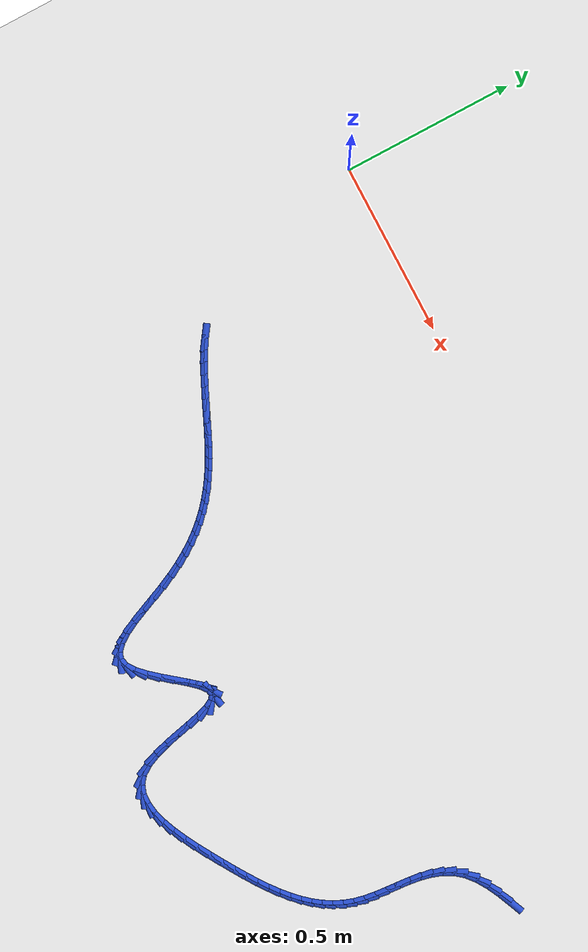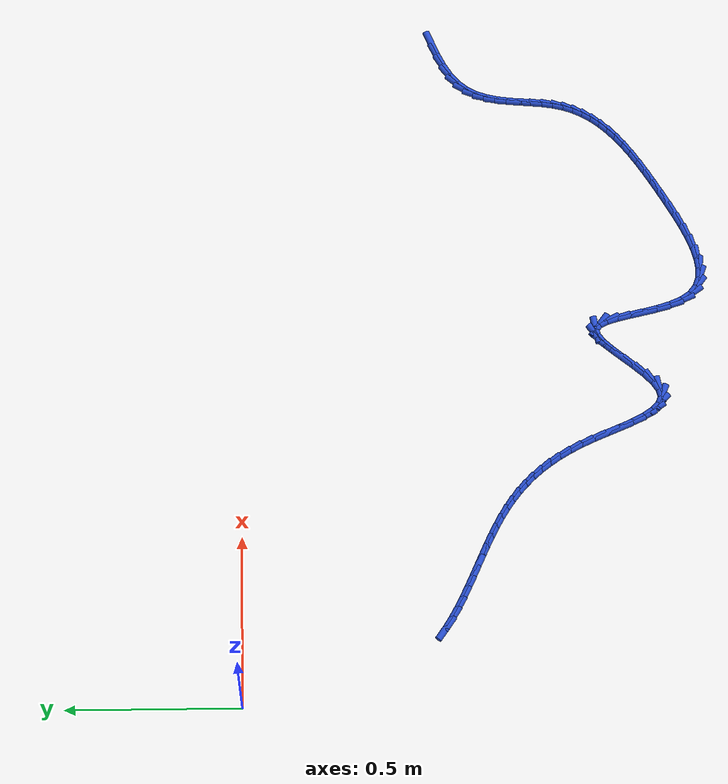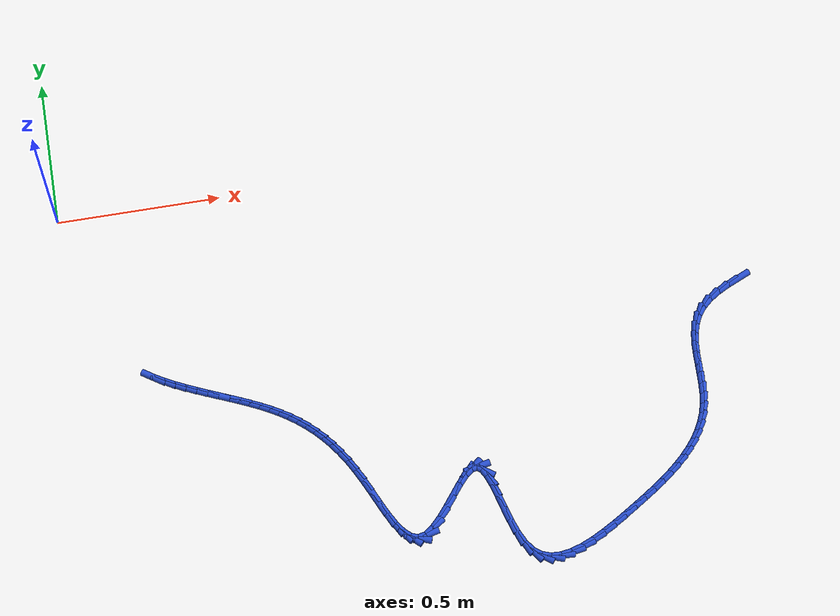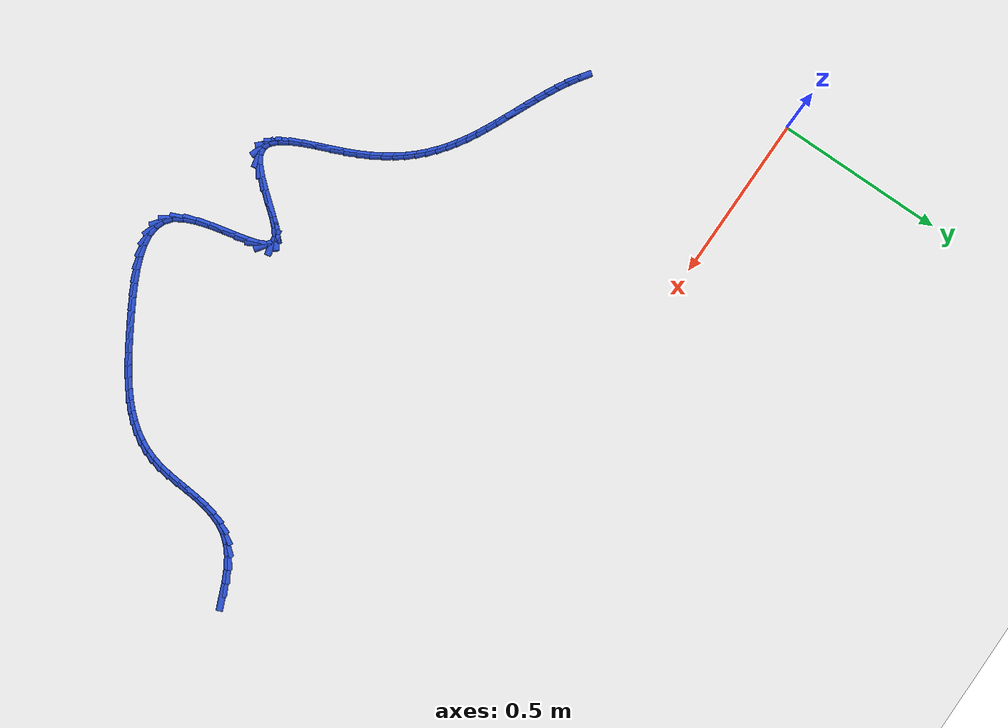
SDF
<sdf version="1.6">
 <world name="default">
  <model name="ground_plane">
   <static>1</static>
   <link name="link">
    <collision name="collision">
     <geometry><plane><normal>0 0 1</normal><size>100 100</size></plane></geometry>
     <surface><friction><ode><mu>100</mu><mu2>50</mu2></ode></friction></surface>
    </collision>
    <visual name="visual">
     <cast_shadows>0</cast_shadows>
     <geometry><plane><normal>0 0 1</normal><size>100 100</size></plane></geometry>
     <material>
      <script><uri>file://media/materials/scripts/gazebo.material</uri><name>Gazebo/WhiteGlow</name></script>
     </material>
    </visual>
   </link>
  </model>
  <model name="line">
   <link name="link_147">
    <pose>2.0054319029994048 -0.559471973808938 0.01 0 1.57 0.4056390792592658</pose>
    <collision name="collision">
     <geometry><cylinder><radius>0.01</radius><length>0.08</length></cylinder></geometry>
    </collision>
    <visual name="visual">
     <material>
      <script><name>Gazebo/Blue</name><uri>file://media/materials/scripts/gazebo.material</uri></script>
     </material>
     <geometry><cylinder><radius>0.01</radius><length>0.08</length></cylinder></geometry>
    </visual>
   </link>
   <link name="link_148">
    <pose>1.9691334730101608 -0.5750605619044523 0.01 0 1.57 0.47111645827912885</pose>
    <collision name="collision">
     <geometry><cylinder><radius>0.01</radius><length>0.08</length></cylinder></geometry>
    </collision>
    <visual name="visual">
     <material>
      <script><name>Gazebo/Blue</name><uri>file://media/materials/scripts/gazebo.material</uri></script>
     </material>
     <geometry><cylinder><radius>0.01</radius><length>0.08</length></cylinder></geometry>
    </visual>
   </link>
   <link name="link_149">
    <pose>1.9350761337238387 -0.5924083907757873 0.01 0 1.57 0.5677818243430379</pose>
    <collision name="collision">
     <geometry><cylinder><radius>0.01</radius><length>0.08</length></cylinder></geometry>
    </collision>
    <visual name="visual">
     <material>
      <script><name>Gazebo/Blue</name><uri>file://media/materials/scripts/gazebo.material</uri></script>
     </material>
     <geometry><cylinder><radius>0.01</radius><length>0.08</length></cylinder></geometry>
    </visual>
   </link>
   <link name="link_150">
    <pose>1.9044531952002002 -0.6119410329802835 0.01 0 1.57 0.705544664240346</pose>
    <collision name="collision">
     <geometry><cylinder><radius>0.01</radius><length>0.08</length></cylinder></geometry>
    </collision>
    <visual name="visual">
     <material>
      <script><name>Gazebo/Blue</name><uri>file://media/materials/scripts/gazebo.material</uri></script>
     </material>
     <geometry><cylinder><radius>0.01</radius><length>0.08</length></cylinder></geometry>
    </visual>
   </link>
   <link name="link_151">
    <pose>1.8784579674990054 -0.6340840610752805 0.01 0 1.57 0.8906338838607798</pose>
    <collision name="collision">
     <geometry><cylinder><radius>0.01</radius><length>0.08</length></cylinder></geometry>
    </collision>
    <visual name="visual">
     <material>
      <script><name>Gazebo/Blue</name><uri>file://media/materials/scripts/gazebo.material</uri></script>
     </material>
     <geometry><cylinder><radius>0.01</radius><length>0.08</length></cylinder></geometry>
    </visual>
   </link>
   <link name="link_152">
    <pose>1.8581413570265488 -0.6591994708857888 0.01 0 1.57 1.0795803566229536</pose>
    <collision name="collision">
     <geometry><cylinder><radius>0.01</radius><length>0.08</length></cylinder></geometry>
    </collision>
    <visual name="visual">
     <material>
      <script><name>Gazebo/Blue</name><uri>file://media/materials/scripts/gazebo.material</uri></script>
     </material>
     <geometry><cylinder><radius>0.01</radius><length>0.08</length></cylinder></geometry>
    </visual>
   </link>
   <link name="link_153">
    <pose>1.8432367722700516 -0.6870610555432347 0.01 0 1.57 1.2356052381880083</pose>
    <collision name="collision">
     <geometry><cylinder><radius>0.01</radius><length>0.08</length></cylinder></geometry>
    </collision>
    <visual name="visual">
     <material>
      <script><name>Gazebo/Blue</name><uri>file://media/materials/scripts/gazebo.material</uri></script>
     </material>
     <geometry><cylinder><radius>0.01</radius><length>0.08</length></cylinder></geometry>
    </visual>
   </link>
   <link name="link_154">
    <pose>1.8327646769383654 -0.7171243108725037 0.01 0 1.57 1.352792654542039</pose>
    <collision name="collision">
     <geometry><cylinder><radius>0.01</radius><length>0.08</length></cylinder></geometry>
    </collision>
    <visual name="visual">
     <material>
      <script><name>Gazebo/Blue</name><uri>file://media/materials/scripts/gazebo.material</uri></script>
     </material>
     <geometry><cylinder><radius>0.01</radius><length>0.08</length></cylinder></geometry>
    </visual>
   </link>
   <link name="link_155">
    <pose>1.8257385288021484 -0.748841604866811 0.01 0 1.57 1.4325543098311484</pose>
    <collision name="collision">
     <geometry><cylinder><radius>0.01</radius><length>0.08</length></cylinder></geometry>
    </collision>
    <visual name="visual">
     <material>
      <script><name>Gazebo/Blue</name><uri>file://media/materials/scripts/gazebo.material</uri></script>
     </material>
     <geometry><cylinder><radius>0.01</radius><length>0.08</length></cylinder></geometry>
    </visual>
   </link>
   <link name="link_156">
    <pose>1.8211717856320593 -0.7816653055193721 0.01 0 1.57 1.4783805474872647</pose>
    <collision name="collision">
     <geometry><cylinder><radius>0.01</radius><length>0.08</length></cylinder></geometry>
    </collision>
    <visual name="visual">
     <material>
      <script><name>Gazebo/Blue</name><uri>file://media/materials/scripts/gazebo.material</uri></script>
     </material>
     <geometry><cylinder><radius>0.01</radius><length>0.08</length></cylinder></geometry>
    </visual>
   </link>
   <link name="link_157">
    <pose>1.818077905198756 -0.8150477808234025 0.01 0 1.57 1.492868876917657</pose>
    <collision name="collision">
     <geometry><cylinder><radius>0.01</radius><length>0.08</length></cylinder></geometry>
    </collision>
    <visual name="visual">
     <material>
      <script><name>Gazebo/Blue</name><uri>file://media/materials/scripts/gazebo.material</uri></script>
     </material>
     <geometry><cylinder><radius>0.01</radius><length>0.08</length></cylinder></geometry>
    </visual>
   </link>
   <link name="link_158">
    <pose>1.8154703452728964 -0.8484413987721177 0.01 0 1.57 1.4764921823929134</pose>
    <collision name="collision">
     <geometry><cylinder><radius>0.01</radius><length>0.08</length></cylinder></geometry>
    </collision>
    <visual name="visual">
     <material>
      <script><name>Gazebo/Blue</name><uri>file://media/materials/scripts/gazebo.material</uri></script>
     </material>
     <geometry><cylinder><radius>0.01</radius><length>0.08</length></cylinder></geometry>
    </visual>
   </link>
   <link name="link_159">
    <pose>1.8123625636251388 -0.8812985273587326 0.01 0 1.57 1.4271864880053398</pose>
    <collision name="collision">
     <geometry><cylinder><radius>0.01</radius><length>0.08</length></cylinder></geometry>
    </collision>
    <visual name="visual">
     <material>
      <script><name>Gazebo/Blue</name><uri>file://media/materials/scripts/gazebo.material</uri></script>
     </material>
     <geometry><cylinder><radius>0.01</radius><length>0.08</length></cylinder></geometry>
    </visual>
   </link>
   <link name="link_160">
    <pose>1.8077680180261422 -0.9130715345764635 0.01 0 1.57 1.3415482476127145</pose>
    <collision name="collision">
     <geometry><cylinder><radius>0.01</radius><length>0.08</length></cylinder></geometry>
    </collision>
    <visual name="visual">
     <material>
      <script><name>Gazebo/Blue</name><uri>file://media/materials/scripts/gazebo.material</uri></script>
     </material>
     <geometry><cylinder><radius>0.01</radius><length>0.08</length></cylinder></geometry>
    </visual>
   </link>
   <link name="link_161">
    <pose>1.8007300299544342 -0.9432321399479178 0.01 0 1.57 1.2360228265871485</pose>
    <collision name="collision">
     <geometry><cylinder><radius>0.01</radius><length>0.08</length></cylinder></geometry>
    </collision>
    <visual name="visual">
     <material>
      <script><name>Gazebo/Blue</name><uri>file://media/materials/scripts/gazebo.material</uri></script>
     </material>
     <geometry><cylinder><radius>0.01</radius><length>0.08</length></cylinder></geometry>
    </visual>
   </link>
   <link name="link_162">
    <pose>1.790855727138452 -0.9716174065513189 0.01 0 1.57 1.130904500464293</pose>
    <collision name="collision">
     <geometry><cylinder><radius>0.01</radius><length>0.08</length></cylinder></geometry>
    </collision>
    <visual name="visual">
     <material>
      <script><name>Gazebo/Blue</name><uri>file://media/materials/scripts/gazebo.material</uri></script>
     </material>
     <geometry><cylinder><radius>0.01</radius><length>0.08</length></cylinder></geometry>
    </visual>
   </link>
   <link name="link_163">
    <pose>1.7782551242466198 -0.998390265620406 0.01 0 1.57 1.0304240104928533</pose>
    <collision name="collision">
     <geometry><cylinder><radius>0.01</radius><length>0.08</length></cylinder></geometry>
    </collision>
    <visual name="visual">
     <material>
      <script><name>Gazebo/Blue</name><uri>file://media/materials/scripts/gazebo.material</uri></script>
     </material>
     <geometry><cylinder><radius>0.01</radius><length>0.08</length></cylinder></geometry>
    </visual>
   </link>
   <link name="link_164">
    <pose>1.7630558658335809 -1.0237250724646856 0.01 0 1.57 0.93755809303977</pose>
    <collision name="collision">
     <geometry><cylinder><radius>0.01</radius><length>0.08</length></cylinder></geometry>
    </collision>
    <visual name="visual">
     <material>
      <script><name>Gazebo/Blue</name><uri>file://media/materials/scripts/gazebo.material</uri></script>
     </material>
     <geometry><cylinder><radius>0.01</radius><length>0.08</length></cylinder></geometry>
    </visual>
   </link>
   <link name="link_165">
    <pose>1.7453855964539822 -1.0477961823936652 0.01 0 1.57 0.8543225286454955</pose>
    <collision name="collision">
     <geometry><cylinder><radius>0.01</radius><length>0.08</length></cylinder></geometry>
    </collision>
    <visual name="visual">
     <material>
      <script><name>Gazebo/Blue</name><uri>file://media/materials/scripts/gazebo.material</uri></script>
     </material>
     <geometry><cylinder><radius>0.01</radius><length>0.08</length></cylinder></geometry>
    </visual>
   </link>
   <link name="link_166">
    <pose>1.725371960662468 -1.070777950716852 0.01 0 1.57 0.7817279814561916</pose>
    <collision name="collision">
     <geometry><cylinder><radius>0.01</radius><length>0.08</length></cylinder></geometry>
    </collision>
    <visual name="visual">
     <material>
      <script><name>Gazebo/Blue</name><uri>file://media/materials/scripts/gazebo.material</uri></script>
     </material>
     <geometry><cylinder><radius>0.01</radius><length>0.08</length></cylinder></geometry>
    </visual>
   </link>
   <link name="link_167">
    <pose>1.703142603013684 -1.092844732743753 0.01 0 1.57 0.7199560558161325</pose>
    <collision name="collision">
     <geometry><cylinder><radius>0.01</radius><length>0.08</length></cylinder></geometry>
    </collision>
    <visual name="visual">
     <material>
      <script><name>Gazebo/Blue</name><uri>file://media/materials/scripts/gazebo.material</uri></script>
     </material>
     <geometry><cylinder><radius>0.01</radius><length>0.08</length></cylinder></geometry>
    </visual>
   </link>
   <link name="link_168">
    <pose>1.6788251680622757 -1.1141708837838753 0.01 0 1.57 0.668622000349838</pose>
    <collision name="collision">
     <geometry><cylinder><radius>0.01</radius><length>0.08</length></cylinder></geometry>
    </collision>
    <visual name="visual">
     <material>
      <script><name>Gazebo/Blue</name><uri>file://media/materials/scripts/gazebo.material</uri></script>
     </material>
     <geometry><cylinder><radius>0.01</radius><length>0.08</length></cylinder></geometry>
    </visual>
   </link>
   <link name="link_169">
    <pose>1.6525473003628874 -1.134930759146726 0.01 0 1.57 0.6270220154053316</pose>
    <collision name="collision">
     <geometry><cylinder><radius>0.01</radius><length>0.08</length></cylinder></geometry>
    </collision>
    <visual name="visual">
     <material>
      <script><name>Gazebo/Blue</name><uri>file://media/materials/scripts/gazebo.material</uri></script>
     </material>
     <geometry><cylinder><radius>0.01</radius><length>0.08</length></cylinder></geometry>
    </visual>
   </link>
   <link name="link_170">
    <pose>1.6244366444701654 -1.1552987141418125 0.01 0 1.57 0.5943191457709256</pose>
    <collision name="collision">
     <geometry><cylinder><radius>0.01</radius><length>0.08</length></cylinder></geometry>
    </collision>
    <visual name="visual">
     <material>
      <script><name>Gazebo/Blue</name><uri>file://media/materials/scripts/gazebo.material</uri></script>
     </material>
     <geometry><cylinder><radius>0.01</radius><length>0.08</length></cylinder></geometry>
    </visual>
   </link>
   <link name="link_171">
    <pose>1.5946208449387533 -1.1754491040786414 0.01 0 1.57 0.5696626807447425</pose>
    <collision name="collision">
     <geometry><cylinder><radius>0.01</radius><length>0.08</length></cylinder></geometry>
    </collision>
    <visual name="visual">
     <material>
      <script><name>Gazebo/Blue</name><uri>file://media/materials/scripts/gazebo.material</uri></script>
     </material>
     <geometry><cylinder><radius>0.01</radius><length>0.08</length></cylinder></geometry>
    </visual>
   </link>
   <link name="link_172">
    <pose>1.5632275463232983 -1.1955562842667204 0.01 0 1.57 0.5522544543548584</pose>
    <collision name="collision">
     <geometry><cylinder><radius>0.01</radius><length>0.08</length></cylinder></geometry>
    </collision>
    <visual name="visual">
     <material>
      <script><name>Gazebo/Blue</name><uri>file://media/materials/scripts/gazebo.material</uri></script>
     </material>
     <geometry><cylinder><radius>0.01</radius><length>0.08</length></cylinder></geometry>
    </visual>
   </link>
   <link name="link_173">
    <pose>1.5303843931784447 -1.2157946100155566 0.01 0 1.57 0.5410954348617614</pose>
    <collision name="collision">
     <geometry><cylinder><radius>0.01</radius><length>0.08</length></cylinder></geometry>
    </collision>
    <visual name="visual">
     <material>
      <script><name>Gazebo/Blue</name><uri>file://media/materials/scripts/gazebo.material</uri></script>
     </material>
     <geometry><cylinder><radius>0.01</radius><length>0.08</length></cylinder></geometry>
    </visual>
   </link>
   <link name="link_174">
    <pose>1.4962254245075721 -1.2363214053139808 0.01 0 1.57 0.5268051824917338</pose>
    <collision name="collision">
     <geometry><cylinder><radius>0.01</radius><length>0.08</length></cylinder></geometry>
    </collision>
    <visual name="visual">
     <material>
      <script><name>Gazebo/Blue</name><uri>file://media/materials/scripts/gazebo.material</uri></script>
     </material>
     <geometry><cylinder><radius>0.01</radius><length>0.08</length></cylinder></geometry>
    </visual>
   </link>
   <link name="link_175">
    <pose>1.4610850953608823 -1.256760195209894 0.01 0 1.57 0.49837641234972113</pose>
    <collision name="collision">
     <geometry><cylinder><radius>0.01</radius><length>0.08</length></cylinder></geometry>
    </collision>
    <visual name="visual">
     <material>
      <script><name>Gazebo/Blue</name><uri>file://media/materials/scripts/gazebo.material</uri></script>
     </material>
     <geometry><cylinder><radius>0.01</radius><length>0.08</length></cylinder></geometry>
    </visual>
   </link>
   <link name="link_176">
    <pose>1.4255333356493307 -1.2761073282686908 0.01 0 1.57 0.45287383333891446</pose>
    <collision name="collision">
     <geometry><cylinder><radius>0.01</radius><length>0.08</length></cylinder></geometry>
    </collision>
    <visual name="visual">
     <material>
      <script><name>Gazebo/Blue</name><uri>file://media/materials/scripts/gazebo.material</uri></script>
     </material>
     <geometry><cylinder><radius>0.01</radius><length>0.08</length></cylinder></geometry>
    </visual>
   </link>
   <link name="link_177">
    <pose>1.3901535386678787 -1.2933232939504737 0.01 0 1.57 0.38536466304712114</pose>
    <collision name="collision">
     <geometry><cylinder><radius>0.01</radius><length>0.08</length></cylinder></geometry>
    </collision>
    <visual name="visual">
     <material>
      <script><name>Gazebo/Blue</name><uri>file://media/materials/scripts/gazebo.material</uri></script>
     </material>
     <geometry><cylinder><radius>0.01</radius><length>0.08</length></cylinder></geometry>
    </visual>
   </link>
   <link name="link_178">
    <pose>1.3555290977114898 -1.3073685817153426 0.01 0 1.57 0.28730053011906304</pose>
    <collision name="collision">
     <geometry><cylinder><radius>0.01</radius><length>0.08</length></cylinder></geometry>
    </collision>
    <visual name="visual">
     <material>
      <script><name>Gazebo/Blue</name><uri>file://media/materials/scripts/gazebo.material</uri></script>
     </material>
     <geometry><cylinder><radius>0.01</radius><length>0.08</length></cylinder></geometry>
    </visual>
   </link>
   <link name="link_179">
    <pose>1.3222434060751271 -1.3172036810233996 0.01 0 1.57 0.14517305395166646</pose>
    <collision name="collision">
     <geometry><cylinder><radius>0.01</radius><length>0.08</length></cylinder></geometry>
    </collision>
    <visual name="visual">
     <material>
      <script><name>Gazebo/Blue</name><uri>file://media/materials/scripts/gazebo.material</uri></script>
     </material>
     <geometry><cylinder><radius>0.01</radius><length>0.08</length></cylinder></geometry>
    </visual>
   </link>
   <link name="link_180">
    <pose>1.2908798570537547 -1.321789081334745 0.01 0 1.57 -0.05897265366790112</pose>
    <collision name="collision">
     <geometry><cylinder><radius>0.01</radius><length>0.08</length></cylinder></geometry>
    </collision>
    <visual name="visual">
     <material>
      <script><name>Gazebo/Blue</name><uri>file://media/materials/scripts/gazebo.material</uri></script>
     </material>
     <geometry><cylinder><radius>0.01</radius><length>0.08</length></cylinder></geometry>
    </visual>
   </link>
   <link name="link_181">
    <pose>1.2620218439423345 -1.32008527210948 0.01 0 1.57 -0.3371362682998147</pose>
    <collision name="collision">
     <geometry><cylinder><radius>0.01</radius><length>0.08</length></cylinder></geometry>
    </collision>
    <visual name="visual">
     <material>
      <script><name>Gazebo/Blue</name><uri>file://media/materials/scripts/gazebo.material</uri></script>
     </material>
     <geometry><cylinder><radius>0.01</radius><length>0.08</length></cylinder></geometry>
    </visual>
   </link>
   <link name="link_182">
    <pose>1.2362527600358306 -1.3110527428077061 0.01 0 1.57 -0.6670600990132426</pose>
    <collision name="collision">
     <geometry><cylinder><radius>0.01</radius><length>0.08</length></cylinder></geometry>
    </collision>
    <visual name="visual">
     <material>
      <script><name>Gazebo/Blue</name><uri>file://media/materials/scripts/gazebo.material</uri></script>
     </material>
     <geometry><cylinder><radius>0.01</radius><length>0.08</length></cylinder></geometry>
    </visual>
   </link>
   <link name="link_183">
    <pose>1.2141559986292054 -1.2936519828895239 0.01 0 1.57 -0.9720912902372837</pose>
    <collision name="collision">
     <geometry><cylinder><radius>0.01</radius><length>0.08</length></cylinder></geometry>
    </collision>
    <visual name="visual">
     <material>
      <script><name>Gazebo/Blue</name><uri>file://media/materials/scripts/gazebo.material</uri></script>
     </material>
     <geometry><cylinder><radius>0.01</radius><length>0.08</length></cylinder></geometry>
    </visual>
   </link>
   <link name="link_184">
    <pose>1.1961507978212218 -1.2672605829526333 0.01 0 1.57 -1.1648933049816736</pose>
    <collision name="collision">
     <geometry><cylinder><radius>0.01</radius><length>0.08</length></cylinder></geometry>
    </collision>
    <visual name="visual">
     <material>
      <script><name>Gazebo/Blue</name><uri>file://media/materials/scripts/gazebo.material</uri></script>
     </material>
     <geometry><cylinder><radius>0.01</radius><length>0.08</length></cylinder></geometry>
    </visual>
   </link>
   <link name="link_185">
    <pose>1.1817103185826885 -1.233660016356026 0.01 0 1.57 -1.2723799805833367</pose>
    <collision name="collision">
     <geometry><cylinder><radius>0.01</radius><length>0.08</length></cylinder></geometry>
    </collision>
    <visual name="visual">
     <material>
      <script><name>Gazebo/Blue</name><uri>file://media/materials/scripts/gazebo.material</uri></script>
     </material>
     <geometry><cylinder><radius>0.01</radius><length>0.08</length></cylinder></geometry>
    </visual>
   </link>
   <link name="link_186">
    <pose>1.1699695001853274 -1.1954911423247192 0.01 0 1.57 -1.328569882437698</pose>
    <collision name="collision">
     <geometry><cylinder><radius>0.01</radius><length>0.08</length></cylinder></geometry>
    </collision>
    <visual name="visual">
     <material>
      <script><name>Gazebo/Blue</name><uri>file://media/materials/scripts/gazebo.material</uri></script>
     </material>
     <geometry><cylinder><radius>0.01</radius><length>0.08</length></cylinder></geometry>
    </visual>
   </link>
   <link name="link_187">
    <pose>1.1600628570120752 -1.155395899681571 0.01 0 1.57 -1.3476088270727726</pose>
    <collision name="collision">
     <geometry><cylinder><radius>0.01</radius><length>0.08</length></cylinder></geometry>
    </collision>
    <visual name="visual">
     <material>
      <script><name>Gazebo/Blue</name><uri>file://media/materials/scripts/gazebo.material</uri></script>
     </material>
     <geometry><cylinder><radius>0.01</radius><length>0.08</length></cylinder></geometry>
    </visual>
   </link>
   <link name="link_188">
    <pose>1.1511249034458702 -1.11601622724944 0.01 0 1.57 -1.3302850017898697</pose>
    <collision name="collision">
     <geometry><cylinder><radius>0.01</radius><length>0.08</length></cylinder></geometry>
    </collision>
    <visual name="visual">
     <material>
      <script><name>Gazebo/Blue</name><uri>file://media/materials/scripts/gazebo.material</uri></script>
     </material>
     <geometry><cylinder><radius>0.01</radius><length>0.08</length></cylinder></geometry>
    </visual>
   </link>
   <link name="link_189">
    <pose>1.142290153869649 -1.0799940638511836 0.01 0 1.57 -1.2614027386976006</pose>
    <collision name="collision">
     <geometry><cylinder><radius>0.01</radius><length>0.08</length></cylinder></geometry>
    </collision>
    <visual name="visual">
     <material>
      <script><name>Gazebo/Blue</name><uri>file://media/materials/scripts/gazebo.material</uri></script>
     </material>
     <geometry><cylinder><radius>0.01</radius><length>0.08</length></cylinder></geometry>
    </visual>
   </link>
   <link name="link_190">
    <pose>1.1326931226663484 -1.04997134830966 0.01 0 1.57 -1.087363961877176</pose>
    <collision name="collision">
     <geometry><cylinder><radius>0.01</radius><length>0.08</length></cylinder></geometry>
    </collision>
    <visual name="visual">
     <material>
      <script><name>Gazebo/Blue</name><uri>file://media/materials/scripts/gazebo.material</uri></script>
     </material>
     <geometry><cylinder><radius>0.01</radius><length>0.08</length></cylinder></geometry>
    </visual>
   </link>
   <link name="link_191">
    <pose>1.1214683242189059 -1.0285900194477273 0.01 0 1.57 -0.6345524882448157</pose>
    <collision name="collision">
     <geometry><cylinder><radius>0.01</radius><length>0.08</length></cylinder></geometry>
    </collision>
    <visual name="visual">
     <material>
      <script><name>Gazebo/Blue</name><uri>file://media/materials/scripts/gazebo.material</uri></script>
     </material>
     <geometry><cylinder><radius>0.01</radius><length>0.08</length></cylinder></geometry>
    </visual>
   </link>
   <link name="link_192">
    <pose>1.1077502729102588 -1.018492016088244 0.01 0 1.57 0.2009148966285884</pose>
    <collision name="collision">
     <geometry><cylinder><radius>0.01</radius><length>0.08</length></cylinder></geometry>
    </collision>
    <visual name="visual">
     <material>
      <script><name>Gazebo/Blue</name><uri>file://media/materials/scripts/gazebo.material</uri></script>
     </material>
     <geometry><cylinder><radius>0.01</radius><length>0.08</length></cylinder></geometry>
    </visual>
   </link>
   <link name="link_193">
    <pose>1.0907679912498853 -1.0219506734815884 0.01 0 1.57 0.662080056576595</pose>
    <collision name="collision">
     <geometry><cylinder><radius>0.01</radius><length>0.08</length></cylinder></geometry>
    </collision>
    <visual name="visual">
     <material>
      <script><name>Gazebo/Blue</name><uri>file://media/materials/scripts/gazebo.material</uri></script>
     </material>
     <geometry><cylinder><radius>0.01</radius><length>0.08</length></cylinder></geometry>
    </visual>
   </link>
   <link name="link_194">
    <pose>1.0706819051581793 -1.037606637952343 0.01 0 1.57 0.8264478925882043</pose>
    <collision name="collision">
     <geometry><cylinder><radius>0.01</radius><length>0.08</length></cylinder></geometry>
    </collision>
    <visual name="visual">
     <material>
      <script><name>Gazebo/Blue</name><uri>file://media/materials/scripts/gazebo.material</uri></script>
     </material>
     <geometry><cylinder><radius>0.01</radius><length>0.08</length></cylinder></geometry>
    </visual>
   </link>
   <link name="link_195">
    <pose>1.0481824174325145 -1.0620335233133311 0.01 0 1.57 0.8875388117874917</pose>
    <collision name="collision">
     <geometry><cylinder><radius>0.01</radius><length>0.08</length></cylinder></geometry>
    </collision>
    <visual name="visual">
     <material>
      <script><name>Gazebo/Blue</name><uri>file://media/materials/scripts/gazebo.material</uri></script>
     </material>
     <geometry><cylinder><radius>0.01</radius><length>0.08</length></cylinder></geometry>
    </visual>
   </link>
   <link name="link_196">
    <pose>1.0239660617993138 -1.0917810313347451 0.01 0 1.57 0.8971667386119829</pose>
    <collision name="collision">
     <geometry><cylinder><radius>0.01</radius><length>0.08</length></cylinder></geometry>
    </collision>
    <visual name="visual">
     <material>
      <script><name>Gazebo/Blue</name><uri>file://media/materials/scripts/gazebo.material</uri></script>
     </material>
     <geometry><cylinder><radius>0.01</radius><length>0.08</length></cylinder></geometry>
    </visual>
   </link>
   <link name="link_197">
    <pose>0.9987293719850012 -1.1233988637867784 0.01 0 1.57 0.8657553523322403</pose>
    <collision name="collision">
     <geometry><cylinder><radius>0.01</radius><length>0.08</length></cylinder></geometry>
    </collision>
    <visual name="visual">
     <material>
      <script><name>Gazebo/Blue</name><uri>file://media/materials/scripts/gazebo.material</uri></script>
     </material>
     <geometry><cylinder><radius>0.01</radius><length>0.08</length></cylinder></geometry>
    </visual>
   </link>
   <link name="link_198">
    <pose>0.9731688817160005 -1.1534367224396236 0.01 0 1.57 0.7818087946099906</pose>
    <collision name="collision">
     <geometry><cylinder><radius>0.01</radius><length>0.08</length></cylinder></geometry>
    </collision>
    <visual name="visual">
     <material>
      <script><name>Gazebo/Blue</name><uri>file://media/materials/scripts/gazebo.material</uri></script>
     </material>
     <geometry><cylinder><radius>0.01</radius><length>0.08</length></cylinder></geometry>
    </visual>
   </link>
   <link name="link_199">
    <pose>0.947981124718735 -1.1784443090634733 0.01 0 1.57 0.6007528416845783</pose>
    <collision name="collision">
     <geometry><cylinder><radius>0.01</radius><length>0.08</length></cylinder></geometry>
    </collision>
    <visual name="visual">
     <material>
      <script><name>Gazebo/Blue</name><uri>file://media/materials/scripts/gazebo.material</uri></script>
     </material>
     <geometry><cylinder><radius>0.01</radius><length>0.08</length></cylinder></geometry>
    </visual>
   </link>
   <link name="link_200">
    <pose>0.923862634719629 -1.1949713254285215 0.01 0 1.57 0.20805031007603395</pose>
    <collision name="collision">
     <geometry><cylinder><radius>0.01</radius><length>0.08</length></cylinder></geometry>
    </collision>
    <visual name="visual">
     <material>
      <script><name>Gazebo/Blue</name><uri>file://media/materials/scripts/gazebo.material</uri></script>
     </material>
     <geometry><cylinder><radius>0.01</radius><length>0.08</length></cylinder></geometry>
    </visual>
   </link>
   <link name="link_201">
    <pose>0.9014859121942915 -1.1996951639903664 0.01 0 1.57 -0.35870611392035373</pose>
    <collision name="collision">
     <geometry><cylinder><radius>0.01</radius><length>0.08</length></cylinder></geometry>
    </collision>
    <visual name="visual">
     <material>
      <script><name>Gazebo/Blue</name><uri>file://media/materials/scripts/gazebo.material</uri></script>
     </material>
     <geometry><cylinder><radius>0.01</radius><length>0.08</length></cylinder></geometry>
    </visual>
   </link>
   <link name="link_202">
    <pose>0.8810105372972736 -1.192018406063262 0.01 0 1.57 -0.7625742015519451</pose>
    <collision name="collision">
     <geometry><cylinder><radius>0.01</radius><length>0.08</length></cylinder></geometry>
    </collision>
    <visual name="visual">
     <material>
      <script><name>Gazebo/Blue</name><uri>file://media/materials/scripts/gazebo.material</uri></script>
     </material>
     <geometry><cylinder><radius>0.01</radius><length>0.08</length></cylinder></geometry>
    </visual>
   </link>
   <link name="link_203">
    <pose>0.8621043751899103 -1.1739561561275798 0.01 0 1.57 -0.9791942627225847</pose>
    <collision name="collision">
     <geometry><cylinder><radius>0.01</radius><length>0.08</length></cylinder></geometry>
    </collision>
    <visual name="visual">
     <material>
      <script><name>Gazebo/Blue</name><uri>file://media/materials/scripts/gazebo.material</uri></script>
     </material>
     <geometry><cylinder><radius>0.01</radius><length>0.08</length></cylinder></geometry>
    </visual>
   </link>
   <link name="link_204">
    <pose>0.8444155012184337 -1.1476286636178288 0.01 0 1.57 -1.092785548349265</pose>
    <collision name="collision">
     <geometry><cylinder><radius>0.01</radius><length>0.08</length></cylinder></geometry>
    </collision>
    <visual name="visual">
     <material>
      <script><name>Gazebo/Blue</name><uri>file://media/materials/scripts/gazebo.material</uri></script>
     </material>
     <geometry><cylinder><radius>0.01</radius><length>0.08</length></cylinder></geometry>
    </visual>
   </link>
   <link name="link_205">
    <pose>0.8275919907290762 -1.1151561779685202 0.01 0 1.57 -1.1505356874253667</pose>
    <collision name="collision">
     <geometry><cylinder><radius>0.01</radius><length>0.08</length></cylinder></geometry>
    </collision>
    <visual name="visual">
     <material>
      <script><name>Gazebo/Blue</name><uri>file://media/materials/scripts/gazebo.material</uri></script>
     </material>
     <geometry><cylinder><radius>0.01</radius><length>0.08</length></cylinder></geometry>
    </visual>
   </link>
   <link name="link_206">
    <pose>0.8112819190680698 -1.0786589486141633 0.01 0 1.57 -1.1727293854011782</pose>
    <collision name="collision">
     <geometry><cylinder><radius>0.01</radius><length>0.08</length></cylinder></geometry>
    </collision>
    <visual name="visual">
     <material>
      <script><name>Gazebo/Blue</name><uri>file://media/materials/scripts/gazebo.material</uri></script>
     </material>
     <geometry><cylinder><radius>0.01</radius><length>0.08</length></cylinder></geometry>
    </visual>
   </link>
   <link name="link_207">
    <pose>0.7951333615816475 -1.0402572249892685 0.01 0 1.57 -1.1664898034495619</pose>
    <collision name="collision">
     <geometry><cylinder><radius>0.01</radius><length>0.08</length></cylinder></geometry>
    </collision>
    <visual name="visual">
     <material>
      <script><name>Gazebo/Blue</name><uri>file://media/materials/scripts/gazebo.material</uri></script>
     </material>
     <geometry><cylinder><radius>0.01</radius><length>0.08</length></cylinder></geometry>
    </visual>
   </link>
   <link name="link_208">
    <pose>0.7787943936160403 -1.0020712565283452 0.01 0 1.57 -1.1322045591567322</pose>
    <collision name="collision">
     <geometry><cylinder><radius>0.01</radius><length>0.08</length></cylinder></geometry>
    </collision>
    <visual name="visual">
     <material>
      <script><name>Gazebo/Blue</name><uri>file://media/materials/scripts/gazebo.material</uri></script>
     </material>
     <geometry><cylinder><radius>0.01</radius><length>0.08</length></cylinder></geometry>
    </visual>
   </link>
   <link name="link_209">
    <pose>0.7619271564476209 -0.966111699824831 0.01 0 1.57 -1.0822811125129645</pose>
    <collision name="collision">
     <geometry><cylinder><radius>0.01</radius><length>0.08</length></cylinder></geometry>
    </collision>
    <visual name="visual">
     <material>
      <script><name>Gazebo/Blue</name><uri>file://media/materials/scripts/gazebo.material</uri></script>
     </material>
     <geometry><cylinder><radius>0.01</radius><length>0.08</length></cylinder></geometry>
    </visual>
   </link>
   <link name="link_210">
    <pose>0.7443636850829408 -0.9330655068620561 0.01 0 1.57 -1.0274599253115377</pose>
    <collision name="collision">
     <geometry><cylinder><radius>0.01</radius><length>0.08</length></cylinder></geometry>
    </collision>
    <visual name="visual">
     <material>
      <script><name>Gazebo/Blue</name><uri>file://media/materials/scripts/gazebo.material</uri></script>
     </material>
     <geometry><cylinder><radius>0.01</radius><length>0.08</length></cylinder></geometry>
    </visual>
   </link>
   <link name="link_211">
    <pose>0.7260487295862909 -0.9027414251045791 0.01 0 1.57 -0.968484853849191</pose>
    <collision name="collision">
     <geometry><cylinder><radius>0.01</radius><length>0.08</length></cylinder></geometry>
    </collision>
    <visual name="visual">
     <material>
      <script><name>Gazebo/Blue</name><uri>file://media/materials/scripts/gazebo.material</uri></script>
     </material>
     <geometry><cylinder><radius>0.01</radius><length>0.08</length></cylinder></geometry>
    </visual>
   </link>
   <link name="link_212">
    <pose>0.7069290632226553 -0.8749324385153632 0.01 0 1.57 -0.9062549223019492</pose>
    <collision name="collision">
     <geometry><cylinder><radius>0.01</radius><length>0.08</length></cylinder></geometry>
    </collision>
    <visual name="visual">
     <material>
      <script><name>Gazebo/Blue</name><uri>file://media/materials/scripts/gazebo.material</uri></script>
     </material>
     <geometry><cylinder><radius>0.01</radius><length>0.08</length></cylinder></geometry>
    </visual>
   </link>
   <link name="link_213">
    <pose>0.6869514592570192 -0.849431531057372 0.01 0 1.57 -0.8420355320779807</pose>
    <collision name="collision">
     <geometry><cylinder><radius>0.01</radius><length>0.08</length></cylinder></geometry>
    </collision>
    <visual name="visual">
     <material>
      <script><name>Gazebo/Blue</name><uri>file://media/materials/scripts/gazebo.material</uri></script>
     </material>
     <geometry><cylinder><radius>0.01</radius><length>0.08</length></cylinder></geometry>
    </visual>
   </link>
   <link name="link_214">
    <pose>0.6660626909543674 -0.8260316866935693 0.01 0 1.57 -0.777387024210876</pose>
    <collision name="collision">
     <geometry><cylinder><radius>0.01</radius><length>0.08</length></cylinder></geometry>
    </collision>
    <visual name="visual">
     <material>
      <script><name>Gazebo/Blue</name><uri>file://media/materials/scripts/gazebo.material</uri></script>
     </material>
     <geometry><cylinder><radius>0.01</radius><length>0.08</length></cylinder></geometry>
    </visual>
   </link>
   <link name="link_215">
    <pose>0.6442095315796846 -0.8045258893869186 0.01 0 1.57 -0.7140264257584554</pose>
    <collision name="collision">
     <geometry><cylinder><radius>0.01</radius><length>0.08</length></cylinder></geometry>
    </collision>
    <visual name="visual">
     <material>
      <script><name>Gazebo/Blue</name><uri>file://media/materials/scripts/gazebo.material</uri></script>
     </material>
     <geometry><cylinder><radius>0.01</radius><length>0.08</length></cylinder></geometry>
    </visual>
   </link>
   <link name="link_216">
    <pose>0.6213387543979555 -0.7847071231003834 0.01 0 1.57 -0.653648739166398</pose>
    <collision name="collision">
     <geometry><cylinder><radius>0.01</radius><length>0.08</length></cylinder></geometry>
    </collision>
    <visual name="visual">
     <material>
      <script><name>Gazebo/Blue</name><uri>file://media/materials/scripts/gazebo.material</uri></script>
     </material>
     <geometry><cylinder><radius>0.01</radius><length>0.08</length></cylinder></geometry>
    </visual>
   </link>
   <link name="link_217">
    <pose>0.597397132674165 -0.7663683717969275 0.01 0 1.57 -0.5977515389735544</pose>
    <collision name="collision">
     <geometry><cylinder><radius>0.01</radius><length>0.08</length></cylinder></geometry>
    </collision>
    <visual name="visual">
     <material>
      <script><name>Gazebo/Blue</name><uri>file://media/materials/scripts/gazebo.material</uri></script>
     </material>
     <geometry><cylinder><radius>0.01</radius><length>0.08</length></cylinder></geometry>
    </visual>
   </link>
   <link name="link_218">
    <pose>0.5723314396732979 -0.7493026194395147 0.01 0 1.57 -0.5475051692728995</pose>
    <collision name="collision">
     <geometry><cylinder><radius>0.01</radius><length>0.08</length></cylinder></geometry>
    </collision>
    <visual name="visual">
     <material>
      <script><name>Gazebo/Blue</name><uri>file://media/materials/scripts/gazebo.material</uri></script>
     </material>
     <geometry><cylinder><radius>0.01</radius><length>0.08</length></cylinder></geometry>
    </visual>
   </link>
   <link name="link_219">
    <pose>0.546088448660339 -0.7333028499911084 0.01 0 1.57 -0.5039179794292502</pose>
    <collision name="collision">
     <geometry><cylinder><radius>0.01</radius><length>0.08</length></cylinder></geometry>
    </collision>
    <visual name="visual">
     <material>
      <script><name>Gazebo/Blue</name><uri>file://media/materials/scripts/gazebo.material</uri></script>
     </material>
     <geometry><cylinder><radius>0.01</radius><length>0.08</length></cylinder></geometry>
    </visual>
   </link>
   <link name="link_220">
    <pose>0.5186315614041114 -0.7181631027399 0.01 0 1.57 -0.4694496263030165</pose>
    <collision name="collision">
     <geometry><cylinder><radius>0.01</radius><length>0.08</length></cylinder></geometry>
    </collision>
    <visual name="visual">
     <material>
      <script><name>Gazebo/Blue</name><uri>file://media/materials/scripts/gazebo.material</uri></script>
     </material>
     <geometry><cylinder><radius>0.01</radius><length>0.08</length></cylinder></geometry>
    </visual>
   </link>
   <link name="link_221">
    <pose>0.49009725892278266 -0.7036884014198281 0.01 0 1.57 -0.4447303765165971</pose>
    <collision name="collision">
     <geometry><cylinder><radius>0.01</radius><length>0.08</length></cylinder></geometry>
    </collision>
    <visual name="visual">
     <material>
      <script><name>Gazebo/Blue</name><uri>file://media/materials/scripts/gazebo.material</uri></script>
     </material>
     <geometry><cylinder><radius>0.01</radius><length>0.08</length></cylinder></geometry>
    </visual>
   </link>
   <link name="link_222">
    <pose>0.46072477630528064 -0.6896902910348262 0.01 0 1.57 -0.4290342032357015</pose>
    <collision name="collision">
     <geometry><cylinder><radius>0.01</radius><length>0.08</length></cylinder></geometry>
    </collision>
    <visual name="visual">
     <material>
      <script><name>Gazebo/Blue</name><uri>file://media/materials/scripts/gazebo.material</uri></script>
     </material>
     <geometry><cylinder><radius>0.01</radius><length>0.08</length></cylinder></geometry>
    </visual>
   </link>
   <link name="link_223">
    <pose>0.4307547019987354 -0.6759804024794804 0.01 0 1.57 -0.4218347922872157</pose>
    <collision name="collision">
     <geometry><cylinder><radius>0.01</radius><length>0.08</length></cylinder></geometry>
    </collision>
    <visual name="visual">
     <material>
      <script><name>Gazebo/Blue</name><uri>file://media/materials/scripts/gazebo.material</uri></script>
     </material>
     <geometry><cylinder><radius>0.01</radius><length>0.08</length></cylinder></geometry>
    </visual>
   </link>
   <link name="link_224">
    <pose>0.40042762445027696 -0.6623703666483778 0.01 0 1.57 -0.4228260812188005</pose>
    <collision name="collision">
     <geometry><cylinder><radius>0.01</radius><length>0.08</length></cylinder></geometry>
    </collision>
    <visual name="visual">
     <material>
      <script><name>Gazebo/Blue</name><uri>file://media/materials/scripts/gazebo.material</uri></script>
     </material>
     <geometry><cylinder><radius>0.01</radius><length>0.08</length></cylinder></geometry>
    </visual>
   </link>
   <link name="link_225">
    <pose>0.36998413210703535 -0.6486718144361043 0.01 0 1.57 -0.4319156831302588</pose>
    <collision name="collision">
     <geometry><cylinder><radius>0.01</radius><length>0.08</length></cylinder></geometry>
    </collision>
    <visual name="visual">
     <material>
      <script><name>Gazebo/Blue</name><uri>file://media/materials/scripts/gazebo.material</uri></script>
     </material>
     <geometry><cylinder><radius>0.01</radius><length>0.08</length></cylinder></geometry>
    </visual>
   </link>
   <link name="link_226">
    <pose>0.3396648134161407 -0.634696376737247 0.01 0 1.57 -0.4492145182498705</pose>
    <collision name="collision">
     <geometry><cylinder><radius>0.01</radius><length>0.08</length></cylinder></geometry>
    </collision>
    <visual name="visual">
     <material>
      <script><name>Gazebo/Blue</name><uri>file://media/materials/scripts/gazebo.material</uri></script>
     </material>
     <geometry><cylinder><radius>0.01</radius><length>0.08</length></cylinder></geometry>
    </visual>
   </link>
   <link name="link_227">
    <pose>0.30971025682472275 -0.620255684446392 0.01 0 1.57 -0.4750225743785284</pose>
    <collision name="collision">
     <geometry><cylinder><radius>0.01</radius><length>0.08</length></cylinder></geometry>
    </collision>
    <visual name="visual">
     <material>
      <script><name>Gazebo/Blue</name><uri>file://media/materials/scripts/gazebo.material</uri></script>
     </material>
     <geometry><cylinder><radius>0.01</radius><length>0.08</length></cylinder></geometry>
    </visual>
   </link>
   <link name="link_228">
    <pose>0.28036105077991175 -0.6051613684581261 0.01 0 1.57 -0.5098064520246819</pose>
    <collision name="collision">
     <geometry><cylinder><radius>0.01</radius><length>0.08</length></cylinder></geometry>
    </collision>
    <visual name="visual">
     <material>
      <script><name>Gazebo/Blue</name><uri>file://media/materials/scripts/gazebo.material</uri></script>
     </material>
     <geometry><cylinder><radius>0.01</radius><length>0.08</length></cylinder></geometry>
    </visual>
   </link>
   <link name="link_229">
    <pose>0.2518577837288377 -0.5892250596670355 0.01 0 1.57 -0.5541599041479904</pose>
    <collision name="collision">
     <geometry><cylinder><radius>0.01</radius><length>0.08</length></cylinder></geometry>
    </collision>
    <visual name="visual">
     <material>
      <script><name>Gazebo/Blue</name><uri>file://media/materials/scripts/gazebo.material</uri></script>
     </material>
     <geometry><cylinder><radius>0.01</radius><length>0.08</length></cylinder></geometry>
    </visual>
   </link>
   <link name="link_230">
    <pose>0.22444104411863045 -0.5722583889677069 0.01 0 1.57 -0.6087337960286562</pose>
    <collision name="collision">
     <geometry><cylinder><radius>0.01</radius><length>0.08</length></cylinder></geometry>
    </collision>
    <visual name="visual">
     <material>
      <script><name>Gazebo/Blue</name><uri>file://media/materials/scripts/gazebo.material</uri></script>
     </material>
     <geometry><cylinder><radius>0.01</radius><length>0.08</length></cylinder></geometry>
    </visual>
   </link>
  </model>
 </world>
</sdf>
